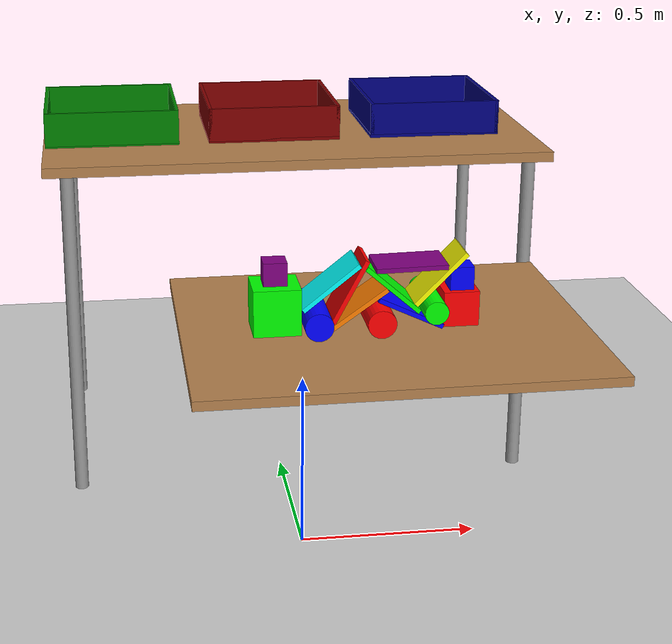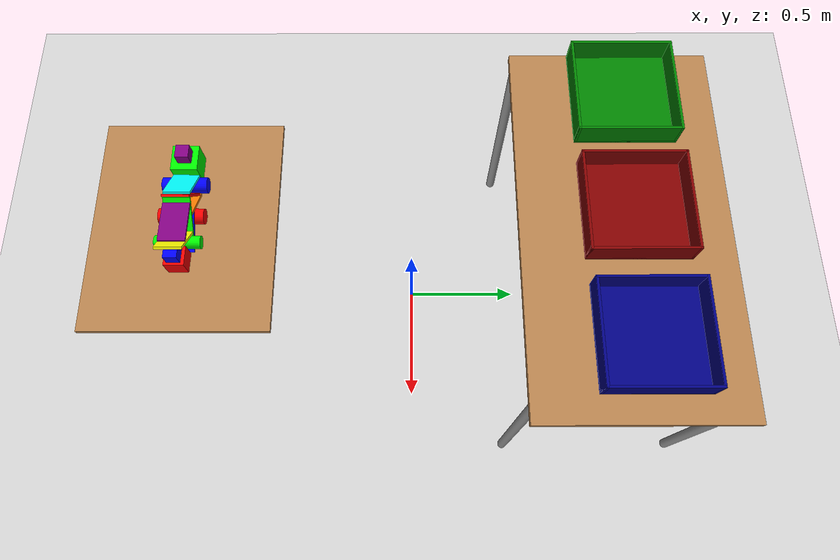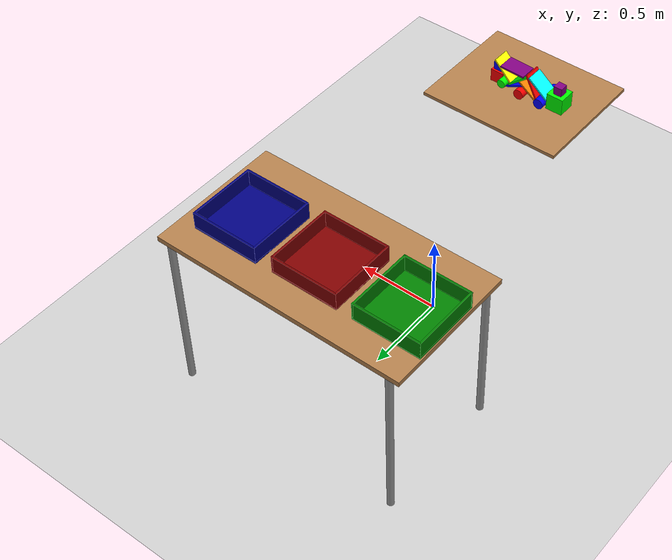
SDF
<sdf version="1.7">
 <world name="default">
  <light name="sun" type="directional">
   <pose>0 0 10 0 -0 0</pose>
   <diffuse>0.8 0.8 0.8 1</diffuse>
   <specular>0.2 0.2 0.2 1</specular>
   <attenuation>
    <range>1000</range>
    <constant>0.9</constant>
    <linear>0.01</linear>
    <quadratic>0.001</quadratic>
   </attenuation>
   <direction>-0.5 0.1 -0.9</direction>
   <spot><inner_angle>0</inner_angle><outer_angle>0</outer_angle><falloff>0</falloff></spot>
  </light>
  <model name="ground_plane">
   <static>1</static>
   <link name="link">
    <collision name="collision">
     <geometry><plane><normal>0 0 1</normal><size>100 100</size></plane></geometry>
     <surface><friction><ode><mu>100</mu><mu2>50</mu2></ode></friction></surface>
    </collision>
    <visual name="visual">
     <cast_shadows>0</cast_shadows>
     <geometry><plane><normal>0 0 1</normal><size>100 100</size></plane></geometry>
     <material>
      <script><uri>file://media/materials/scripts/gazebo.material</uri><name>Gazebo/Grey</name></script>
     </material>
    </visual>
   </link>
  </model>
  <gravity>0 0 -9.8</gravity>
  <magnetic_field>6e-06 2.3e-05 -4.2e-05</magnetic_field>
  <atmosphere type="adiabatic"/>
  <physics type="ode">
   <max_step_size>0.001</max_step_size>
   <real_time_factor>1</real_time_factor>
   <real_time_update_rate>1000</real_time_update_rate>
  </physics>
  <scene><ambient>0.4 0.4 0.4 1</ambient><background>0.7 0.7 0.7 1</background><shadows>1</shadows></scene>
  <audio><device>default</device></audio>
  <spherical_coordinates>
   <surface_model>EARTH_WGS84</surface_model>
   <latitude_deg>0</latitude_deg>
   <longitude_deg>0</longitude_deg>
   <elevation>0</elevation>
   <heading_deg>0</heading_deg>
  </spherical_coordinates>
  <model name="table">
   <static>1</static>
   <link name="link">
    <collision name="surface">
     <pose>0 0 1 0 -0 0</pose>
     <geometry><box><size>1.5 0.8 0.03</size></box></geometry>
     <surface>
      <friction><ode><mu>10</mu><mu2>5</mu2></ode></friction>
      <contact><ode><soft_cfm>0.0001</soft_cfm><soft_erp>0.4</soft_erp><kp>1e+06</kp><kd>10</kd></ode></contact>
     </surface>
    </collision>
    <visual name="visual1">
     <pose>0 0 1 0 -0 0</pose>
     <geometry><box><size>1.5 0.8 0.03</size></box></geometry>
     <material>
      <script><uri>file://media/materials/scripts/gazebo.material</uri><name>Gazebo/Wood</name></script>
     </material>
    </visual>
    <collision name="front_left_leg">
     <pose>0.68 0.38 0.5 0 -0 0</pose>
     <geometry><cylinder><radius>0.02</radius><length>1</length></cylinder></geometry>
    </collision>
    <visual name="front_left_leg">
     <pose>0.68 0.38 0.5 0 -0 0</pose>
     <geometry><cylinder><radius>0.02</radius><length>1</length></cylinder></geometry>
     <material>
      <script><uri>file://media/materials/scripts/gazebo.material</uri><name>Gazebo/Grey</name></script>
     </material>
    </visual>
    <collision name="front_right_leg">
     <pose>0.68 -0.38 0.5 0 -0 0</pose>
     <geometry><cylinder><radius>0.02</radius><length>1</length></cylinder></geometry>
    </collision>
    <visual name="front_right_leg">
     <pose>0.68 -0.38 0.5 0 -0 0</pose>
     <geometry><cylinder><radius>0.02</radius><length>1</length></cylinder></geometry>
     <material>
      <script><uri>file://media/materials/scripts/gazebo.material</uri><name>Gazebo/Grey</name></script>
     </material>
    </visual>
    <collision name="back_right_leg">
     <pose>-0.68 -0.38 0.5 0 -0 0</pose>
     <geometry><cylinder><radius>0.02</radius><length>1</length></cylinder></geometry>
    </collision>
    <visual name="back_right_leg">
     <pose>-0.68 -0.38 0.5 0 -0 0</pose>
     <geometry><cylinder><radius>0.02</radius><length>1</length></cylinder></geometry>
     <material>
      <script><uri>file://media/materials/scripts/gazebo.material</uri><name>Gazebo/Grey</name></script>
     </material>
    </visual>
    <collision name="back_left_leg">
     <pose>-0.68 0.38 0.5 0 -0 0</pose>
     <geometry><cylinder><radius>0.02</radius><length>1</length></cylinder></geometry>
    </collision>
    <visual name="back_left_leg">
     <pose>-0.68 0.38 0.5 0 -0 0</pose>
     <geometry><cylinder><radius>0.02</radius><length>1</length></cylinder></geometry>
     <material>
      <script><uri>file://media/materials/scripts/gazebo.material</uri><name>Gazebo/Grey</name></script>
     </material>
    </visual>
    <inertial>
     <inertia><ixx>1</ixx><ixy>0</ixy><ixz>0</ixz><iyy>1</iyy><iyz>0</iyz><izz>1</izz></inertia>
     <mass>50</mass>
    </inertial>
   </link>
   <pose>0.056083 0.801191 -1.2e-05 0 -0 2.5e-05</pose>
  </model>
  <plugin name="gazebo_link_attacher" filename="libgazebo_link_attacher.so"/>
  <plugin name="gazebo_ros_state" filename="libgazebo_ros_state.so">
   <namespace>/gazebo</namespace>
   <update_rate>100</update_rate>
  </plugin>
  <model name="cube_b">
   <link name="link_2">
    <inertial>
     <mass>2</mass>
     <inertia>
      <ixx>0.00083333</ixx>
      <ixy>0</ixy>
      <ixz>0</ixz>
      <iyy>0.00083333</iyy>
      <iyz>0</iyz>
      <izz>0.00083333</izz>
     </inertia>
    </inertial>
    <visual name="visual">
     <geometry><box><size>0.05 0.05 0.05</size></box></geometry>
     <material>
      <lighting>1</lighting>
      <script><uri>file://media/materials/scripts/gazebo.material</uri><name>Gazebo/Grey</name></script>
      <ambient>0 0 1 1</ambient>
      <diffuse>0 0 1 1</diffuse>
      <specular>0 0 0 1</specular>
      <emissive>0 0 0 1</emissive>
      <shader type="vertex"><normal_map>__default__</normal_map></shader>
     </material>
    </visual>
    <collision name="collision">
     <geometry><box><size>0.05 0.05 0.05</size></box></geometry>
     <surface>
      <friction>
       <ode><mu>0.8</mu><mu2>0.8</mu2><fdir1>0 0 0</fdir1><slip1>0</slip1><slip2>0</slip2></ode>
       <torsional>
        <coefficient>1</coefficient>
        <patch_radius>0</patch_radius>
        <surface_radius>0</surface_radius>
        <use_patch_radius>1</use_patch_radius>
        <ode><slip>0</slip></ode>
       </torsional>
      </friction>
      <bounce><restitution_coefficient>0</restitution_coefficient><threshold>1e+06</threshold></bounce>
      <contact>
       <collide_without_contact>0</collide_without_contact>
       <collide_without_contact_bitmask>1</collide_without_contact_bitmask>
       <collide_bitmask>1</collide_bitmask>
       <ode>
        <soft_cfm>0.0001</soft_cfm>
        <soft_erp>0.4</soft_erp>
        <kp>1e+06</kp>
        <kd>10</kd>
        <max_vel>0.01</max_vel>
        <min_depth>0</min_depth>
       </ode>
      </contact>
     </surface>
    </collision>
   </link>
   <static>0</static>
   <allow_auto_disable>0</allow_auto_disable>
   <pose>0.205751 -0.860606 1.08633 -1.56834 -0.003259 -0.017663</pose>
  </model>
  <model name="cube_g">
   <link name="link_2">
    <inertial>
     <mass>2</mass>
     <inertia>
      <ixx>0.00333333</ixx>
      <iyy>0.00333333</iyy>
      <izz>0.00333333</izz>
      <ixy>0</ixy>
      <ixz>0</ixz>
      <iyz>0</iyz>
     </inertia>
    </inertial>
    <visual name="visual">
     <geometry><box><size>0.1 0.1 0.1</size></box></geometry>
     <material>
      <lighting>1</lighting>
      <script><uri>file://media/materials/scripts/gazebo.material</uri><name>Gazebo/Grey</name></script>
      <ambient>0 1 0 1</ambient>
      <diffuse>0 1 0 1</diffuse>
      <specular>0 0 0 1</specular>
      <emissive>0 0 0 1</emissive>
      <shader type="vertex"><normal_map>__default__</normal_map></shader>
     </material>
    </visual>
    <collision name="collision">
     <geometry><box><size>0.1 0.1 0.1</size></box></geometry>
     <surface>
      <friction>
       <ode><mu>0.8</mu><mu2>0.8</mu2><fdir1>0 0 0</fdir1><slip1>0</slip1><slip2>0</slip2></ode>
       <torsional>
        <coefficient>1</coefficient>
        <patch_radius>0</patch_radius>
        <surface_radius>0</surface_radius>
        <use_patch_radius>1</use_patch_radius>
        <ode><slip>0</slip></ode>
       </torsional>
      </friction>
      <bounce><restitution_coefficient>0</restitution_coefficient><threshold>1e+06</threshold></bounce>
      <contact>
       <collide_without_contact>0</collide_without_contact>
       <collide_without_contact_bitmask>1</collide_without_contact_bitmask>
       <collide_bitmask>1</collide_bitmask>
       <ode>
        <soft_cfm>0.0001</soft_cfm>
        <soft_erp>0.4</soft_erp>
        <kp>1e+06</kp>
        <kd>10</kd>
        <max_vel>0.01</max_vel>
        <min_depth>0</min_depth>
       </ode>
      </contact>
     </surface>
    </collision>
   </link>
   <static>0</static>
   <allow_auto_disable>0</allow_auto_disable>
   <pose>-0.184609 -0.856684 1.0348 0.001164 -0.004395 -0.005241</pose>
  </model>
  <model name="cube_r">
   <link name="link_2">
    <inertial>
     <mass>2</mass>
     <inertia>
      <ixx>0.001875</ixx>
      <ixy>0</ixy>
      <ixz>0</ixz>
      <iyy>0.001875</iyy>
      <iyz>0</iyz>
      <izz>0.001875</izz>
     </inertia>
    </inertial>
    <visual name="visual">
     <geometry><box><size>0.075 0.075 0.075</size></box></geometry>
     <material>
      <lighting>1</lighting>
      <script><uri>file://media/materials/scripts/gazebo.material</uri><name>Gazebo/Grey</name></script>
      <ambient>1 0 0 1</ambient>
      <diffuse>1 0 0 1</diffuse>
      <specular>0 0 0 1</specular>
      <emissive>0 0 0 1</emissive>
      <shader type="vertex"><normal_map>__default__</normal_map></shader>
     </material>
    </visual>
    <collision name="collision">
     <geometry><box><size>0.075 0.075 0.075</size></box></geometry>
     <surface>
      <friction>
       <ode><mu>0.8</mu><mu2>0.8</mu2><fdir1>0 0 0</fdir1><slip1>0</slip1><slip2>0</slip2></ode>
       <torsional>
        <coefficient>1</coefficient>
        <patch_radius>0</patch_radius>
        <surface_radius>0</surface_radius>
        <use_patch_radius>1</use_patch_radius>
        <ode><slip>0</slip></ode>
       </torsional>
      </friction>
      <bounce><restitution_coefficient>0</restitution_coefficient><threshold>1e+06</threshold></bounce>
      <contact>
       <collide_without_contact>0</collide_without_contact>
       <collide_without_contact_bitmask>1</collide_without_contact_bitmask>
       <collide_bitmask>1</collide_bitmask>
       <ode>
        <soft_cfm>0.0001</soft_cfm>
        <soft_erp>0.4</soft_erp>
        <kp>1e+06</kp>
        <kd>10</kd>
        <max_vel>0.01</max_vel>
        <min_depth>0</min_depth>
       </ode>
      </contact>
     </surface>
    </collision>
   </link>
   <static>0</static>
   <allow_auto_disable>0</allow_auto_disable>
   <pose>0.202994 -0.860545 1.02388 1.56783 -0.001525 1.56351</pose>
  </model>
  <model name="cylinder_r">
   <link name="link_0">
    <inertial>
     <mass>0.2</mass>
     <inertia>
      <ixx>0.0005267</ixx>
      <ixy>0</ixy>
      <ixz>0</ixz>
      <iyy>0.0005267</iyy>
      <iyz>0</iyz>
      <izz>9e-05</izz>
     </inertia>
    </inertial>
    <visual name="visual">
     <geometry><cylinder><radius>0.03</radius><length>0.17</length></cylinder></geometry>
     <material>
      <lighting>1</lighting>
      <script><uri>file://media/materials/scripts/gazebo.material</uri><name>Gazebo/Grey</name></script>
      <ambient>1 0 0 1</ambient>
      <diffuse>1 0 0 1</diffuse>
      <specular>0 0 0 1</specular>
      <emissive>0 0 0 1</emissive>
      <shader type="vertex"><normal_map>__default__</normal_map></shader>
     </material>
    </visual>
    <collision name="collision">
     <geometry><cylinder><radius>0.03</radius><length>0.17</length></cylinder></geometry>
     <surface>
      <friction>
       <ode><mu>0.5</mu><mu2>0.5</mu2><fdir1>0 0 0</fdir1><slip1>0</slip1><slip2>0</slip2></ode>
       <torsional>
        <coefficient>1</coefficient>
        <patch_radius>0</patch_radius>
        <surface_radius>0</surface_radius>
        <use_patch_radius>1</use_patch_radius>
        <ode><slip>0</slip></ode>
       </torsional>
      </friction>
      <bounce><restitution_coefficient>0</restitution_coefficient><threshold>1e+06</threshold></bounce>
      <contact>
       <collide_without_contact>0</collide_without_contact>
       <collide_without_contact_bitmask>1</collide_without_contact_bitmask>
       <collide_bitmask>1</collide_bitmask>
       <ode>
        <soft_cfm>0.0001</soft_cfm>
        <soft_erp>0.4</soft_erp>
        <kp>1e+06</kp>
        <kd>10</kd>
        <max_vel>0.01</max_vel>
        <min_depth>0</min_depth>
       </ode>
      </contact>
     </surface>
    </collision>
   </link>
   <static>0</static>
   <allow_auto_disable>0</allow_auto_disable>
   <pose>0.027374 -0.861443 1.01561 -1.57192 -0.30241 3.13062</pose>
  </model>
  <model name="cylinder_b">
   <link name="link_0">
    <inertial>
     <mass>0.2</mass>
     <inertia>
      <ixx>0.0005267</ixx>
      <ixy>0</ixy>
      <ixz>0</ixz>
      <iyy>0.0005267</iyy>
      <iyz>0</iyz>
      <izz>9e-05</izz>
     </inertia>
    </inertial>
    <visual name="visual">
     <geometry><cylinder><radius>0.03</radius><length>0.17</length></cylinder></geometry>
     <material>
      <lighting>1</lighting>
      <ambient>0 0 1 1</ambient>
      <diffuse>0 0 1 1</diffuse>
      <specular>0.1 0.1 0.1 1</specular>
      <emissive>0 0 0 1</emissive>
      <shader type="vertex"><normal_map>__default__</normal_map></shader>
     </material>
    </visual>
    <collision name="collision">
     <geometry><cylinder><radius>0.03</radius><length>0.17</length></cylinder></geometry>
     <surface>
      <friction>
       <ode><mu>0.4</mu><mu2>0.4</mu2><fdir1>0 0 0</fdir1><slip1>0</slip1><slip2>0</slip2></ode>
       <torsional>
        <coefficient>1</coefficient>
        <patch_radius>0</patch_radius>
        <surface_radius>0</surface_radius>
        <use_patch_radius>1</use_patch_radius>
        <ode><slip>0</slip></ode>
       </torsional>
      </friction>
      <bounce><restitution_coefficient>0</restitution_coefficient><threshold>1e+06</threshold></bounce>
      <contact>
       <collide_without_contact>0</collide_without_contact>
       <collide_without_contact_bitmask>1</collide_without_contact_bitmask>
       <collide_bitmask>1</collide_bitmask>
       <ode>
        <soft_cfm>0.0001</soft_cfm>
        <soft_erp>0.4</soft_erp>
        <kp>1e+06</kp>
        <kd>10</kd>
        <max_vel>0.01</max_vel>
        <min_depth>0</min_depth>
       </ode>
      </contact>
     </surface>
    </collision>
   </link>
   <static>0</static>
   <allow_auto_disable>0</allow_auto_disable>
   <pose>-0.102736 -0.861316 1.01512 -1.57316 -1.09405 3.13467</pose>
  </model>
  <model name="cylinder_g">
   <link name="link_0">
    <inertial>
     <mass>0.2</mass>
     <inertia>
      <ixx>0.0005129</ixx>
      <ixy>0</ixy>
      <ixz>0</ixz>
      <iyy>0.0005129</iyy>
      <iyz>0</iyz>
      <izz>6.25e-05</izz>
     </inertia>
    </inertial>
    <visual name="visual">
     <geometry><cylinder><radius>0.025</radius><length>0.17</length></cylinder></geometry>
     <material>
      <lighting>1</lighting>
      <ambient>0 1 0 1</ambient>
      <diffuse>0 1 0 1</diffuse>
      <specular>0.1 0.1 0.1 1</specular>
      <emissive>0 0 0 1</emissive>
      <shader type="vertex"><normal_map>__default__</normal_map></shader>
     </material>
    </visual>
    <collision name="collision">
     <geometry><cylinder><radius>0.025</radius><length>0.17</length></cylinder></geometry>
     <surface>
      <friction>
       <ode><mu>0.5</mu><mu2>0.5</mu2><fdir1>0 0 0</fdir1><slip1>0</slip1><slip2>0</slip2></ode>
       <torsional>
        <coefficient>1</coefficient>
        <patch_radius>0</patch_radius>
        <surface_radius>0</surface_radius>
        <use_patch_radius>1</use_patch_radius>
        <ode><slip>0</slip></ode>
       </torsional>
      </friction>
      <bounce><restitution_coefficient>0</restitution_coefficient><threshold>1e+06</threshold></bounce>
      <contact>
       <collide_without_contact>0</collide_without_contact>
       <collide_without_contact_bitmask>1</collide_without_contact_bitmask>
       <collide_bitmask>1</collide_bitmask>
       <ode>
        <soft_cfm>0.0001</soft_cfm>
        <soft_erp>0.4</soft_erp>
        <kp>1e+06</kp>
        <kd>10</kd>
        <max_vel>0.01</max_vel>
        <min_depth>0</min_depth>
       </ode>
      </contact>
     </surface>
    </collision>
   </link>
   <static>0</static>
   <allow_auto_disable>0</allow_auto_disable>
   <pose>0.140518 -0.859578 1.03421 1.58289 -1.54971 -0.020098</pose>
  </model>
  <model name="cuboid_r">
   <link name="link">
    <inertial>
     <mass>2</mass>
     <inertia>
      <ixx>0.001683</ixx>
      <iyy>0.003767</iyy>
      <izz>0.005417</izz>
      <ixy>0</ixy>
      <ixz>0</ixz>
      <iyz>0</iyz>
     </inertia>
    </inertial>
    <visual name="visual">
     <geometry><box><size>0.15 0.1 0.01</size></box></geometry>
     <material><ambient>1 0 0 1</ambient><diffuse>1 0 0 1</diffuse><specular>0.1 0.1 0.1 1</specular></material>
    </visual>
    <collision name="collision">
     <geometry><box><size>0.15 0.1 0.01</size></box></geometry>
     <surface>
      <friction>
       <ode><mu>0.6</mu><mu2>0.6</mu2><fdir1>0 0 0</fdir1><slip1>0</slip1><slip2>0</slip2></ode>
       <torsional>
        <coefficient>1</coefficient>
        <patch_radius>0</patch_radius>
        <surface_radius>0</surface_radius>
        <use_patch_radius>1</use_patch_radius>
        <ode><slip>0</slip></ode>
       </torsional>
      </friction>
      <bounce><restitution_coefficient>0</restitution_coefficient><threshold>1e+06</threshold></bounce>
      <contact>
       <collide_without_contact>0</collide_without_contact>
       <collide_without_contact_bitmask>1</collide_without_contact_bitmask>
       <collide_bitmask>1</collide_bitmask>
       <ode>
        <soft_cfm>0.0001</soft_cfm>
        <soft_erp>0.4</soft_erp>
        <kp>1e+06</kp>
        <kd>10</kd>
        <max_vel>0.01</max_vel>
        <min_depth>0</min_depth>
       </ode>
      </contact>
     </surface>
    </collision>
   </link>
   <static>0</static>
   <allow_auto_disable>0</allow_auto_disable>
   <pose>-0.033613 -0.856815 1.0734 0.000302 1.08362 3.13522</pose>
  </model>
  <model name="cuboid_g">
   <link name="link">
    <inertial>
     <mass>2</mass>
     <inertia>
      <ixx>0.001683</ixx>
      <iyy>0.003767</iyy>
      <izz>0.005417</izz>
      <ixy>0</ixy>
      <ixz>0</ixz>
      <iyz>0</iyz>
     </inertia>
    </inertial>
    <visual name="visual">
     <geometry><box><size>0.15 0.1 0.01</size></box></geometry>
     <material><ambient>0 1 0 1</ambient><diffuse>0 1 0 1</diffuse><specular>0.1 0.1 0.1 1</specular></material>
    </visual>
    <collision name="collision">
     <geometry><box><size>0.15 0.1 0.01</size></box></geometry>
     <surface>
      <friction>
       <ode><mu>0.6</mu><mu2>0.6</mu2><fdir1>0 0 0</fdir1><slip1>0</slip1><slip2>0</slip2></ode>
       <torsional>
        <coefficient>1</coefficient>
        <patch_radius>0</patch_radius>
        <surface_radius>0</surface_radius>
        <use_patch_radius>1</use_patch_radius>
        <ode><slip>0</slip></ode>
       </torsional>
      </friction>
      <bounce><restitution_coefficient>0</restitution_coefficient><threshold>1e+06</threshold></bounce>
      <contact>
       <collide_without_contact>0</collide_without_contact>
       <collide_without_contact_bitmask>1</collide_without_contact_bitmask>
       <collide_bitmask>1</collide_bitmask>
       <ode>
        <soft_cfm>0.0001</soft_cfm>
        <soft_erp>0.4</soft_erp>
        <kp>1e+06</kp>
        <kd>10</kd>
        <max_vel>0.01</max_vel>
        <min_depth>0</min_depth>
       </ode>
      </contact>
     </surface>
    </collision>
   </link>
   <static>0</static>
   <allow_auto_disable>0</allow_auto_disable>
   <pose>0.056334 -0.857208 1.07415 -0.001554 -0.716741 3.1353</pose>
  </model>
  <model name="cuboid_b">
   <link name="link">
    <inertial>
     <mass>2</mass>
     <inertia>
      <ixx>0.001683</ixx>
      <iyy>0.003767</iyy>
      <izz>0.005417</izz>
      <ixy>0</ixy>
      <ixz>0</ixz>
      <iyz>0</iyz>
     </inertia>
    </inertial>
    <visual name="visual">
     <geometry><box><size>0.15 0.1 0.01</size></box></geometry>
     <material><ambient>0 0 1 1</ambient><diffuse>0 0 1 1</diffuse><specular>0.1 0.1 0.1 1</specular></material>
    </visual>
    <collision name="collision">
     <geometry><box><size>0.15 0.1 0.01</size></box></geometry>
     <surface>
      <friction>
       <ode><mu>0.6</mu><mu2>0.6</mu2><fdir1>0 0 0</fdir1><slip1>0</slip1><slip2>0</slip2></ode>
       <torsional>
        <coefficient>1</coefficient>
        <patch_radius>0</patch_radius>
        <surface_radius>0</surface_radius>
        <use_patch_radius>1</use_patch_radius>
        <ode><slip>0</slip></ode>
       </torsional>
      </friction>
      <bounce><restitution_coefficient>0</restitution_coefficient><threshold>1e+06</threshold></bounce>
      <contact>
       <collide_without_contact>0</collide_without_contact>
       <collide_without_contact_bitmask>1</collide_without_contact_bitmask>
       <collide_bitmask>1</collide_bitmask>
       <ode>
        <soft_cfm>0.0001</soft_cfm>
        <soft_erp>0.4</soft_erp>
        <kp>1e+06</kp>
        <kd>10</kd>
        <max_vel>0.01</max_vel>
        <min_depth>0</min_depth>
       </ode>
      </contact>
     </surface>
    </collision>
   </link>
   <static>0</static>
   <allow_auto_disable>0</allow_auto_disable>
   <pose>0.094747 -0.857858 1.02259 -0.001238 -0.438913 3.13463</pose>
  </model>
  <model name="cuboid_purple">
   <link name="link">
    <inertial>
     <mass>2</mass>
     <inertia>
      <ixx>0.001683</ixx>
      <iyy>0.003767</iyy>
      <izz>0.005417</izz>
      <ixy>0</ixy>
      <ixz>0</ixz>
      <iyz>0</iyz>
     </inertia>
    </inertial>
    <visual name="visual">
     <geometry><box><size>0.15 0.1 0.01</size></box></geometry>
     <material>
      <ambient>0.5 0 0.5 1</ambient>
      <diffuse>0.5 0 0.5 1</diffuse>
      <specular>0.1 0.1 0.1 1</specular>
     </material>
    </visual>
    <collision name="collision">
     <geometry><box><size>0.15 0.1 0.01</size></box></geometry>
     <surface>
      <friction>
       <ode><mu>0.6</mu><mu2>0.6</mu2><fdir1>0 0 0</fdir1><slip1>0</slip1><slip2>0</slip2></ode>
       <torsional>
        <coefficient>1</coefficient>
        <patch_radius>0</patch_radius>
        <surface_radius>0</surface_radius>
        <use_patch_radius>1</use_patch_radius>
        <ode><slip>0</slip></ode>
       </torsional>
      </friction>
      <bounce><restitution_coefficient>0</restitution_coefficient><threshold>1e+06</threshold></bounce>
      <contact>
       <collide_without_contact>0</collide_without_contact>
       <collide_without_contact_bitmask>1</collide_without_contact_bitmask>
       <collide_bitmask>1</collide_bitmask>
       <ode>
        <soft_cfm>0.0001</soft_cfm>
        <soft_erp>0.4</soft_erp>
        <kp>1e+06</kp>
        <kd>10</kd>
        <max_vel>0.01</max_vel>
        <min_depth>0</min_depth>
       </ode>
      </contact>
     </surface>
    </collision>
   </link>
   <static>0</static>
   <allow_auto_disable>0</allow_auto_disable>
   <pose>0.095621 -0.856725 1.11847 0.00243 0.023054 3.13029</pose>
  </model>
  <model name="cuboid_orange">
   <link name="link">
    <inertial>
     <mass>2</mass>
     <inertia>
      <ixx>0.001683</ixx>
      <iyy>0.003767</iyy>
      <izz>0.005417</izz>
      <ixy>0</ixy>
      <ixz>0</ixz>
      <iyz>0</iyz>
     </inertia>
    </inertial>
    <visual name="visual">
     <geometry><box><size>0.15 0.1 0.01</size></box></geometry>
     <material>
      <ambient>1 0.5 0 1</ambient>
      <diffuse>1 0.5 0 1</diffuse>
      <specular>0.1 0.1 0.1 1</specular>
     </material>
    </visual>
    <collision name="collision">
     <geometry><box><size>0.15 0.1 0.01</size></box></geometry>
     <surface>
      <friction>
       <ode><mu>0.6</mu><mu2>0.6</mu2><fdir1>0 0 0</fdir1><slip1>0</slip1><slip2>0</slip2></ode>
       <torsional>
        <coefficient>1</coefficient>
        <patch_radius>0</patch_radius>
        <surface_radius>0</surface_radius>
        <use_patch_radius>1</use_patch_radius>
        <ode><slip>0</slip></ode>
       </torsional>
      </friction>
      <bounce><restitution_coefficient>0</restitution_coefficient><threshold>1e+06</threshold></bounce>
      <contact>
       <collide_without_contact>0</collide_without_contact>
       <collide_without_contact_bitmask>1</collide_without_contact_bitmask>
       <collide_bitmask>1</collide_bitmask>
       <ode>
        <soft_cfm>0.0001</soft_cfm>
        <soft_erp>0.4</soft_erp>
        <kp>1e+06</kp>
        <kd>10</kd>
        <max_vel>0.01</max_vel>
        <min_depth>0</min_depth>
       </ode>
      </contact>
     </surface>
    </collision>
   </link>
   <static>0</static>
   <allow_auto_disable>0</allow_auto_disable>
   <pose>-0.01637 -0.856229 1.03275 -3.14027 -0.617864 -0.008775</pose>
  </model>
  <model name="cuboid_yellow">
   <link name="link">
    <inertial>
     <mass>2</mass>
     <inertia>
      <ixx>0.001683</ixx>
      <iyy>0.003767</iyy>
      <izz>0.005417</izz>
      <ixy>0</ixy>
      <ixz>0</ixz>
      <iyz>0</iyz>
     </inertia>
    </inertial>
    <visual name="visual">
     <geometry><box><size>0.15 0.1 0.01</size></box></geometry>
     <material><ambient>1 1 0 1</ambient><diffuse>1 1 0 1</diffuse><specular>0.1 0.1 0.1 1</specular></material>
    </visual>
    <collision name="collision">
     <geometry><box><size>0.15 0.1 0.01</size></box></geometry>
     <surface>
      <friction>
       <ode><mu>0.6</mu><mu2>0.6</mu2><fdir1>0 0 0</fdir1><slip1>0</slip1><slip2>0</slip2></ode>
       <torsional>
        <coefficient>1</coefficient>
        <patch_radius>0</patch_radius>
        <surface_radius>0</surface_radius>
        <use_patch_radius>1</use_patch_radius>
        <ode><slip>0</slip></ode>
       </torsional>
      </friction>
      <bounce><restitution_coefficient>0</restitution_coefficient><threshold>1e+06</threshold></bounce>
      <contact>
       <collide_without_contact>0</collide_without_contact>
       <collide_without_contact_bitmask>1</collide_without_contact_bitmask>
       <collide_bitmask>1</collide_bitmask>
       <ode>
        <soft_cfm>0.0001</soft_cfm>
        <soft_erp>0.4</soft_erp>
        <kp>1e+06</kp>
        <kd>10</kd>
        <max_vel>0.01</max_vel>
        <min_depth>0</min_depth>
       </ode>
      </contact>
     </surface>
    </collision>
   </link>
   <static>0</static>
   <allow_auto_disable>0</allow_auto_disable>
   <pose>0.156251 -0.858464 1.09337 3.13775 -0.795315 -0.008295</pose>
  </model>
  <model name="cuboid_cyan">
   <link name="link">
    <inertial>
     <mass>2</mass>
     <inertia>
      <ixx>0.001683</ixx>
      <iyy>0.003767</iyy>
      <izz>0.005417</izz>
      <ixy>0</ixy>
      <ixz>0</ixz>
      <iyz>0</iyz>
     </inertia>
    </inertial>
    <visual name="visual">
     <geometry><box><size>0.15 0.1 0.01</size></box></geometry>
     <material><ambient>0 1 1 1</ambient><diffuse>0 1 1 1</diffuse><specular>0.1 0.1 0.1 1</specular></material>
    </visual>
    <collision name="collision">
     <geometry><box><size>0.15 0.1 0.01</size></box></geometry>
     <surface>
      <friction>
       <ode><mu>0.6</mu><mu2>0.6</mu2><fdir1>0 0 0</fdir1><slip1>0</slip1><slip2>0</slip2></ode>
       <torsional>
        <coefficient>1</coefficient>
        <patch_radius>0</patch_radius>
        <surface_radius>0</surface_radius>
        <use_patch_radius>1</use_patch_radius>
        <ode><slip>0</slip></ode>
       </torsional>
      </friction>
      <bounce><restitution_coefficient>0</restitution_coefficient><threshold>1e+06</threshold></bounce>
      <contact>
       <collide_without_contact>0</collide_without_contact>
       <collide_without_contact_bitmask>1</collide_without_contact_bitmask>
       <collide_bitmask>1</collide_bitmask>
       <ode>
        <soft_cfm>0.0001</soft_cfm>
        <soft_erp>0.4</soft_erp>
        <kp>1e+06</kp>
        <kd>10</kd>
        <max_vel>0.01</max_vel>
        <min_depth>0</min_depth>
       </ode>
      </contact>
     </surface>
    </collision>
   </link>
   <static>0</static>
   <allow_auto_disable>0</allow_auto_disable>
   <pose>-0.072912 -0.856511 1.0836 3.13813 -0.672953 -0.003032</pose>
  </model>
  <model name="workspace">
   <link name="link">
    <inertial>
     <mass>100</mass>
     <inertia><ixx>6.02417</ixx><ixy>0</ixy><ixz>0</ixz><iyy>4.08667</iyy><iyz>0</iyz><izz>10.1042</izz></inertia>
    </inertial>
    <visual name="visual">
     <geometry><box><size>0.7 0.85 0.02</size></box></geometry>
     <material>
      <script><name>Gazebo/Wood</name><uri>file://media/materials/scripts/gazebo.material</uri></script>
      <shader type="pixel"/>
     </material>
    </visual>
    <collision name="collision">
     <geometry><box><size>0.7 0.85 0.02</size></box></geometry>
     <surface>
      <friction>
       <ode><mu>100</mu><mu2>50</mu2><fdir1>0 0 0</fdir1><slip1>0</slip1><slip2>0</slip2></ode>
       <torsional>
        <coefficient>1</coefficient>
        <patch_radius>0</patch_radius>
        <surface_radius>0</surface_radius>
        <use_patch_radius>1</use_patch_radius>
        <ode><slip>0</slip></ode>
       </torsional>
      </friction>
      <bounce><restitution_coefficient>0</restitution_coefficient><threshold>1e+06</threshold></bounce>
      <contact>
       <collide_without_contact>0</collide_without_contact>
       <collide_without_contact_bitmask>1</collide_without_contact_bitmask>
       <collide_bitmask>1</collide_bitmask>
       <ode>
        <soft_cfm>0.0001</soft_cfm>
        <soft_erp>0.2</soft_erp>
        <kp>1e+13</kp>
        <kd>10</kd>
        <max_vel>0.01</max_vel>
        <min_depth>0</min_depth>
       </ode>
       <bullet>
        <split_impulse>1</split_impulse>
        <split_impulse_penetration_threshold>-0.01</split_impulse_penetration_threshold>
        <soft_cfm>0</soft_cfm>
        <soft_erp>0.2</soft_erp>
        <kp>1e+13</kp>
        <kd>1</kd>
       </bullet>
      </contact>
     </surface>
    </collision>
   </link>
   <static>1</static>
   <pose>0.0416 -0.859914 0.975746 -0.004154 -0.001127 1.57039</pose>
  </model>
  <model name="tray_red">
   <static>1</static>
   <link name="link">
    <collision name="base_collision">
     <pose>0 0 0.01 0 -0 0</pose>
     <geometry><box><size>0.4 0.4 0.01</size></box></geometry>
     <surface><contact><ode><mu>50</mu><mu2>50</mu2></ode></contact></surface>
    </collision>
    <visual name="base_visual">
     <pose>0 0 0.01 0 -0 0</pose>
     <geometry><box><size>0.4 0.4 0.01</size></box></geometry>
     <material>
      <ambient>1 0 0 1</ambient>
      <diffuse>0.5 0 0 1</diffuse>
      <specular>0 0 0 1</specular>
      <emissive>0 0 0 1</emissive>
      <shininess>100</shininess>
     </material>
    </visual>
    <collision name="front_collision">
     <pose>0 0.195 0.06 0 -0 0</pose>
     <geometry><box><size>0.4 0.01 0.1</size></box></geometry>
    </collision>
    <visual name="front_visual">
     <pose>0 0.195 0.06 0 -0 0</pose>
     <geometry><box><size>0.4 0.01 0.1</size></box></geometry>
     <material>
      <ambient>1 0 0 1</ambient>
      <diffuse>0.5 0 0 1</diffuse>
      <specular>0 0 0 1</specular>
      <emissive>0 0 0 1</emissive>
     </material>
    </visual>
    <collision name="back_collision">
     <pose>0 -0.195 0.06 0 -0 0</pose>
     <geometry><box><size>0.4 0.01 0.1</size></box></geometry>
    </collision>
    <visual name="back_visual">
     <pose>0 -0.195 0.06 0 -0 0</pose>
     <geometry><box><size>0.4 0.01 0.1</size></box></geometry>
     <material>
      <ambient>1 0 0 1</ambient>
      <diffuse>0.5 0 0 1</diffuse>
      <specular>0 0 0 1</specular>
      <emissive>0 0 0 1</emissive>
     </material>
    </visual>
    <collision name="left_collision">
     <pose>0.195 0 0.06 0 -0 0</pose>
     <geometry><box><size>0.01 0.4 0.1</size></box></geometry>
    </collision>
    <visual name="left_visual">
     <pose>0.195 0 0.06 0 -0 0</pose>
     <geometry><box><size>0.01 0.4 0.1</size></box></geometry>
     <material>
      <ambient>1 0 0 1</ambient>
      <diffuse>0.5 0 0 1</diffuse>
      <specular>0 0 0 1</specular>
      <emissive>0 0 0 1</emissive>
     </material>
    </visual>
    <collision name="right_collision">
     <pose>-0.195 0 0.06 0 -0 0</pose>
     <geometry><box><size>0.01 0.4 0.1</size></box></geometry>
    </collision>
    <visual name="right_visual">
     <pose>-0.195 0 0.06 0 -0 0</pose>
     <geometry><box><size>0.01 0.4 0.1</size></box></geometry>
     <material>
      <ambient>1 0 0 1</ambient>
      <diffuse>0.5 0 0 1</diffuse>
      <specular>0 0 0 1</specular>
      <emissive>0 0 0 1</emissive>
     </material>
    </visual>
    <inertial>
     <inertia><ixx>1</ixx><ixy>0</ixy><ixz>0</ixz><iyy>1</iyy><iyz>0</iyz><izz>1</izz></inertia>
     <mass>1</mass>
    </inertial>
   </link>
   <pose>0.003367 0.836815 1.00999 0 -0 0</pose>
  </model>
  <model name="tray_green">
   <static>1</static>
   <link name="link">
    <collision name="base_collision">
     <pose>0 0 0.01 0 -0 0</pose>
     <geometry><box><size>0.4 0.4 0.01</size></box></geometry>
     <surface><contact><ode><mu>50</mu><mu2>50</mu2></ode></contact></surface>
    </collision>
    <visual name="base_visual">
     <pose>0 0 0.01 0 -0 0</pose>
     <geometry><box><size>0.4 0.4 0.01</size></box></geometry>
     <material><ambient>0 1 0 1</ambient><diffuse>0 0.5 0 1</diffuse></material>
    </visual>
    <collision name="front_collision">
     <pose>0 0.195 0.06 0 -0 0</pose>
     <geometry><box><size>0.4 0.01 0.1</size></box></geometry>
    </collision>
    <visual name="front_visual">
     <pose>0 0.195 0.06 0 -0 0</pose>
     <geometry><box><size>0.4 0.01 0.1</size></box></geometry>
     <material><ambient>0 1 0 1</ambient><diffuse>0 0.5 0 1</diffuse></material>
    </visual>
    <collision name="back_collision">
     <pose>0 -0.195 0.06 0 -0 0</pose>
     <geometry><box><size>0.4 0.01 0.1</size></box></geometry>
    </collision>
    <visual name="back_visual">
     <pose>0 -0.195 0.06 0 -0 0</pose>
     <geometry><box><size>0.4 0.01 0.1</size></box></geometry>
     <material><ambient>0 1 0 1</ambient><diffuse>0 0.5 0 1</diffuse></material>
    </visual>
    <collision name="left_collision">
     <pose>0.195 0 0.06 0 -0 0</pose>
     <geometry><box><size>0.01 0.4 0.1</size></box></geometry>
    </collision>
    <visual name="left_visual">
     <pose>0.195 0 0.06 0 -0 0</pose>
     <geometry><box><size>0.01 0.4 0.1</size></box></geometry>
     <material><ambient>0 1 0 1</ambient><diffuse>0 0.5 0 1</diffuse></material>
    </visual>
    <collision name="right_collision">
     <pose>-0.195 0 0.06 0 -0 0</pose>
     <geometry><box><size>0.01 0.4 0.1</size></box></geometry>
    </collision>
    <visual name="right_visual">
     <pose>-0.195 0 0.06 0 -0 0</pose>
     <geometry><box><size>0.01 0.4 0.1</size></box></geometry>
     <material><ambient>0 1 0 1</ambient><diffuse>0 0.5 0 1</diffuse></material>
    </visual>
    <inertial>
     <inertia><ixx>1</ixx><ixy>0</ixy><ixz>0</ixz><iyy>1</iyy><iyz>0</iyz><izz>1</izz></inertia>
     <mass>1</mass>
    </inertial>
   </link>
   <pose>-0.487214 0.834657 1.00999 0 -0 0</pose>
  </model>
  <model name="tray_blue">
   <static>1</static>
   <link name="link">
    <collision name="base_collision">
     <pose>0 0 0.01 0 -0 0</pose>
     <geometry><box><size>0.4 0.4 0.01</size></box></geometry>
     <surface><contact><ode><mu>50</mu><mu2>50</mu2></ode></contact></surface>
    </collision>
    <visual name="base_visual">
     <pose>0 0 0.01 0 -0 0</pose>
     <geometry><box><size>0.4 0.4 0.01</size></box></geometry>
     <material><ambient>0 0 1 1</ambient><diffuse>0 0 0.5 1</diffuse></material>
    </visual>
    <collision name="front_collision">
     <pose>0 0.195 0.06 0 -0 0</pose>
     <geometry><box><size>0.4 0.01 0.1</size></box></geometry>
    </collision>
    <visual name="front_visual">
     <pose>0 0.195 0.06 0 -0 0</pose>
     <geometry><box><size>0.4 0.01 0.1</size></box></geometry>
     <material><ambient>0 0 1 1</ambient><diffuse>0 0 0.5 1</diffuse></material>
    </visual>
    <collision name="back_collision">
     <pose>0 -0.195 0.06 0 -0 0</pose>
     <geometry><box><size>0.4 0.01 0.1</size></box></geometry>
    </collision>
    <visual name="back_visual">
     <pose>0 -0.195 0.06 0 -0 0</pose>
     <geometry><box><size>0.4 0.01 0.1</size></box></geometry>
     <material><ambient>0 0 1 1</ambient><diffuse>0 0 0.5 1</diffuse></material>
    </visual>
    <collision name="left_collision">
     <pose>0.195 0 0.06 0 -0 0</pose>
     <geometry><box><size>0.01 0.4 0.1</size></box></geometry>
    </collision>
    <visual name="left_visual">
     <pose>0.195 0 0.06 0 -0 0</pose>
     <geometry><box><size>0.01 0.4 0.1</size></box></geometry>
     <material><ambient>0 0 1 1</ambient><diffuse>0 0 0.5 1</diffuse></material>
    </visual>
    <collision name="right_collision">
     <pose>-0.195 0 0.06 0 -0 0</pose>
     <geometry><box><size>0.01 0.4 0.1</size></box></geometry>
    </collision>
    <visual name="right_visual">
     <pose>-0.195 0 0.06 0 -0 0</pose>
     <geometry><box><size>0.01 0.4 0.1</size></box></geometry>
     <material><ambient>0 0 1 1</ambient><diffuse>0 0 0.5 1</diffuse></material>
    </visual>
    <inertial>
     <inertia><ixx>1</ixx><ixy>0</ixy><ixz>0</ixz><iyy>1</iyy><iyz>0</iyz><izz>1</izz></inertia>
     <mass>1</mass>
    </inertial>
   </link>
   <pose>0.500589 0.844197 1.00999 0 -0 0</pose>
  </model>
  <model name="cube_purple">
   <link name="link_2">
    <inertial>
     <mass>2</mass>
     <inertia>
      <ixx>0.00083333</ixx>
      <ixy>0</ixy>
      <ixz>0</ixz>
      <iyy>0.00083333</iyy>
      <iyz>0</iyz>
      <izz>0.00083333</izz>
     </inertia>
    </inertial>
    <visual name="visual">
     <geometry><box><size>0.05 0.05 0.05</size></box></geometry>
     <material>
      <lighting>1</lighting>
      <script><uri>file://media/materials/scripts/gazebo.material</uri><name>Gazebo/Grey</name></script>
      <ambient>0.5 0 0.5 1</ambient>
      <diffuse>0.5 0 0.5 1</diffuse>
      <specular>0.1 0.1 0.1 1</specular>
      <emissive>0 0 0 1</emissive>
      <shader type="vertex"><normal_map>__default__</normal_map></shader>
     </material>
    </visual>
    <collision name="collision">
     <geometry><box><size>0.05 0.05 0.05</size></box></geometry>
     <surface>
      <friction>
       <ode><mu>0.8</mu><mu2>0.8</mu2><fdir1>0 0 0</fdir1><slip1>0</slip1><slip2>0</slip2></ode>
       <torsional>
        <coefficient>1</coefficient>
        <patch_radius>0</patch_radius>
        <surface_radius>0</surface_radius>
        <use_patch_radius>1</use_patch_radius>
        <ode><slip>0</slip></ode>
       </torsional>
      </friction>
      <bounce><restitution_coefficient>0</restitution_coefficient><threshold>1e+06</threshold></bounce>
      <contact>
       <collide_without_contact>0</collide_without_contact>
       <collide_without_contact_bitmask>1</collide_without_contact_bitmask>
       <collide_bitmask>1</collide_bitmask>
       <ode>
        <soft_cfm>0.0001</soft_cfm>
        <soft_erp>0.4</soft_erp>
        <kp>1e+06</kp>
        <kd>10</kd>
        <max_vel>0.01</max_vel>
        <min_depth>0</min_depth>
       </ode>
      </contact>
     </surface>
    </collision>
   </link>
   <static>0</static>
   <allow_auto_disable>0</allow_auto_disable>
   <pose>-0.18571 -0.854459 1.10978 -1.56962 -0.004334 -0.016165</pose>
  </model>
 </world>
</sdf>
